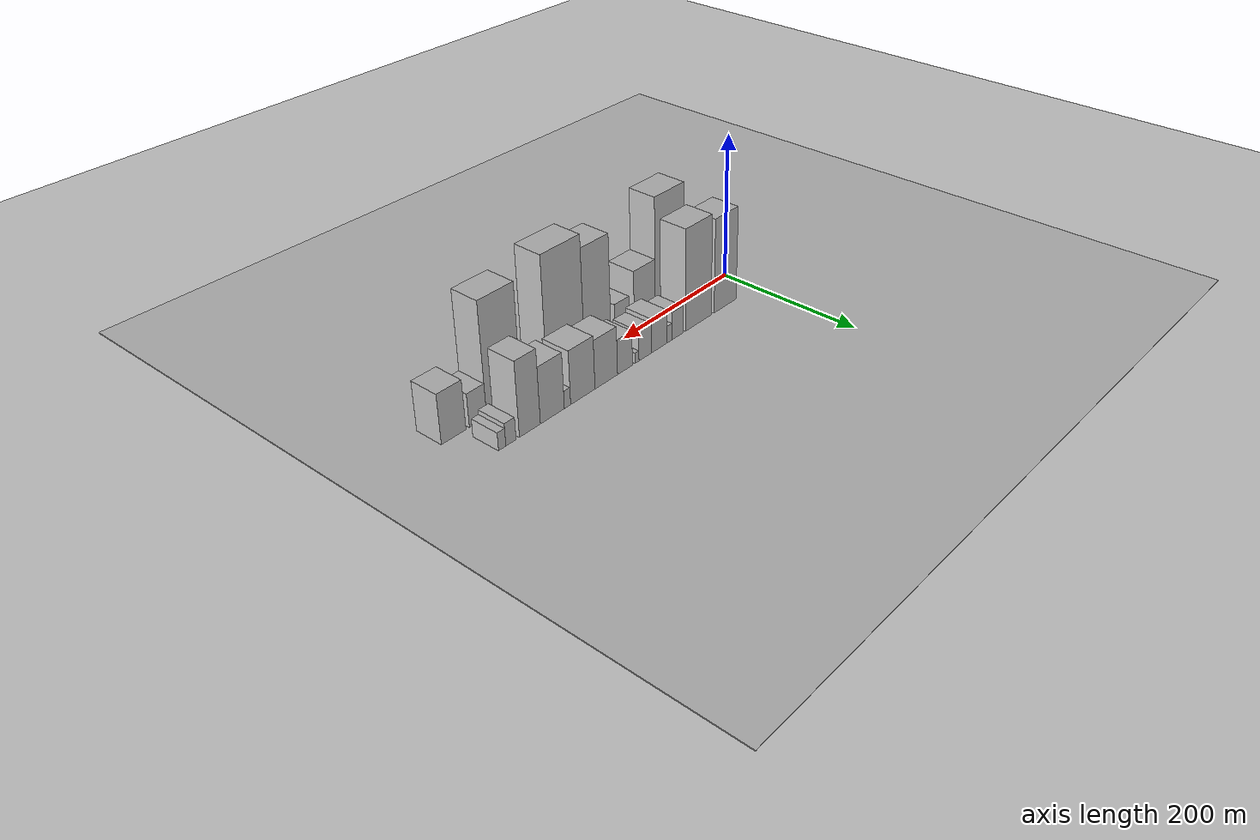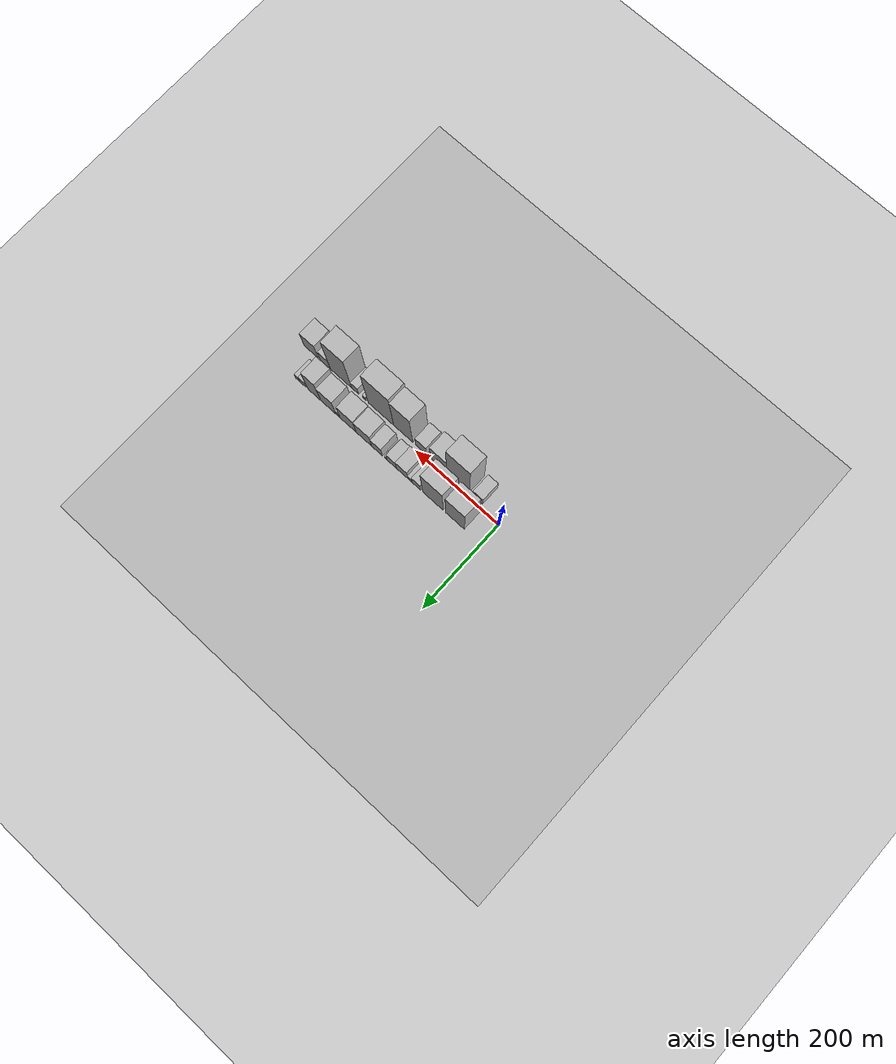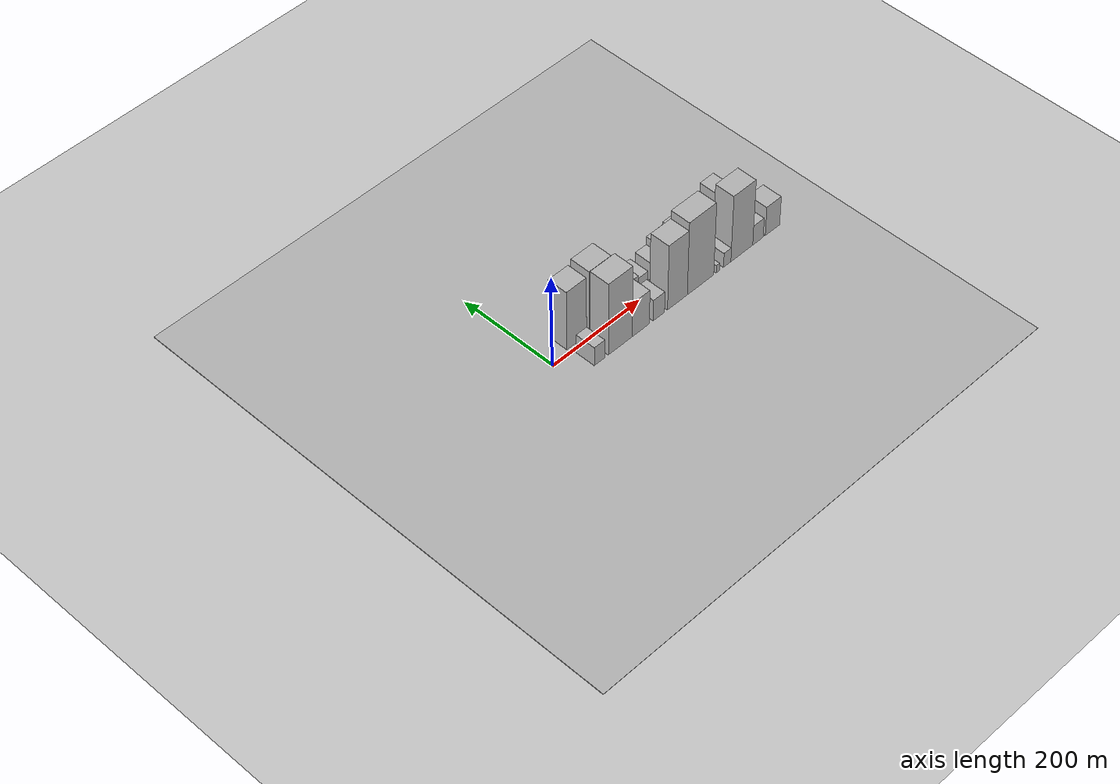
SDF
<?xml version="1.0" encoding="utf-8"?>

<sdf version="1.6">

   <world name="default">

      <gui fullscreen="0">

         <camera name="user_camera">

            <pose>-15 0 4.57585 0 0 0</pose>

            <view_controller>orbit</view_controller>

         </camera>

      </gui>

      <scene>

         <sky>

           <clouds>

             <speed>12</speed>

           </clouds>

         </sky>

         <ambient>0.4 0.4 0.4 1</ambient>

         <background>0.7 0.7 0.7 1</background>

         <shadows>1</shadows>

      </scene>

      <gravity>0 0 -9.8066</gravity>

      <magnetic_field>6e-06 2.3e-05 -4.2e-05</magnetic_field>

      <physics default="0" name="default_physics" type="ode">

         <ode>

            <solver>

               <type>quick</type>

               <iters>10</iters>

               <sor>1.0</sor>

               <use_dynamic_moi_rescaling>0</use_dynamic_moi_rescaling>

            </solver>

            <constraints>

               <cfm>0</cfm>

               <erp>0.2</erp>

               <contact_max_correcting_vel>100</contact_max_correcting_vel>

               <contact_surface_layer>0.001</contact_surface_layer>

            </constraints>

         </ode>

         <max_step_size>0.004</max_step_size>

         <real_time_factor>1</real_time_factor>

         <real_time_update_rate>250</real_time_update_rate>

      </physics>

      <light name="sun" type="directional">

         <cast_shadows>1</cast_shadows>

         <pose>0 0 10 0 0 0</pose>

         <diffuse>0.8 0.8 0.8 1</diffuse>

         <specular>0.2 0.2 0.2 1</specular>

         <attenuation>

            <range>1000</range>

            <constant>0.9</constant>

            <linear>0.01</linear>

            <quadratic>0.001</quadratic>

         </attenuation>

         <direction>-0.5 0.1 -0.9</direction>

      </light>

      <include>

         <name>ground_plane_1</name>

         <uri>model://HANNAS_ground_plane</uri>

         <pose>0 0 0  0 0 0</pose>

      </include>

      <include>

         <name>ground_plane_2</name>

         <uri>model://HANNAS_ground_plane</uri>

         <pose>100 0 0  0 0 0</pose>

      </include>

      <model name="building_1">

         <static>1</static>

         <pose frame="">62.2926 27.5000 0 0.000000 0.000000 1.570796</pose>

         <link name="link">

            <pose frame="">0 0 66.00 0 0 0</pose>

            <collision name="collision">

               <geometry>

                  <box>

                     <size>40.0000 44.5851 132.0000</size>

                  </box>

               </geometry>

               <max_contacts>10</max_contacts>

               <surface>

                  <contact>

                     <ode/>

                  </contact>

                  <bounce/>

                  <friction>

                     <torsional>

                        <ode/>

                     </torsional>

                     <ode/>

                  </friction>

               </surface>

            </collision>

            <visual name="visual">

               <cast_shadows>0</cast_shadows>

               <geometry>

                  <box>

                     <size>40.0000 44.5851 132.0000</size>

                  </box>

               </geometry>

               <material>

                  <script>

                     <uri>model://HANNAS_wall/materials/scripts</uri>

                     <uri>model://HANNAS_wall/materials/textures</uri>

                     <name>vrc/HANNAS_wall</name>

                  </script>

               </material>

            </visual>

            <self_collide>0</self_collide>

            <enable_wind>0</enable_wind>

            <kinematic>0</kinematic>

         </link>

      </model>

      <model name="building_2">

         <static>1</static>

         <pose frame="">115.4744 27.5000 0 0.000000 0.000000 1.570796</pose>

         <link name="link">

            <pose frame="">0 0 70.50 0 0 0</pose>

            <collision name="collision">

               <geometry>

                  <box>

                     <size>40.0000 49.7785 141.0000</size>

                  </box>

               </geometry>

               <max_contacts>10</max_contacts>

               <surface>

                  <contact>

                     <ode/>

                  </contact>

                  <bounce/>

                  <friction>

                     <torsional>

                        <ode/>

                     </torsional>

                     <ode/>

                  </friction>

               </surface>

            </collision>

            <visual name="visual">

               <cast_shadows>0</cast_shadows>

               <geometry>

                  <box>

                     <size>40.0000 49.7785 141.0000</size>

                  </box>

               </geometry>

               <material>

                  <script>

                     <uri>model://HANNAS_wall/materials/scripts</uri>

                     <uri>model://HANNAS_wall/materials/textures</uri>

                     <name>vrc/HANNAS_wall</name>

                  </script>

               </material>

            </visual>

            <self_collide>0</self_collide>

            <enable_wind>0</enable_wind>

            <kinematic>0</kinematic>

         </link>

      </model>

      <model name="building_3">

         <static>1</static>

         <pose frame="">155.6836 27.5000 0 0.000000 0.000000 1.570796</pose>

         <link name="link">

            <pose frame="">0 0 19.50 0 0 0</pose>

            <collision name="collision">

               <geometry>

                  <box>

                     <size>40.0000 20.6399 39.0000</size>

                  </box>

               </geometry>

               <max_contacts>10</max_contacts>

               <surface>

                  <contact>

                     <ode/>

                  </contact>

                  <bounce/>

                  <friction>

                     <torsional>

                        <ode/>

                     </torsional>

                     <ode/>

                  </friction>

               </surface>

            </collision>

            <visual name="visual">

               <cast_shadows>0</cast_shadows>

               <geometry>

                  <box>

                     <size>40.0000 20.6399 39.0000</size>

                  </box>

               </geometry>

               <material>

                  <script>

                     <uri>model://HANNAS_wall/materials/scripts</uri>

                     <uri>model://HANNAS_wall/materials/textures</uri>

                     <name>vrc/HANNAS_wall</name>

                  </script>

               </material>

            </visual>

            <self_collide>0</self_collide>

            <enable_wind>0</enable_wind>

            <kinematic>0</kinematic>

         </link>

      </model>

      <model name="building_4">

         <static>1</static>

         <pose frame="">171.1858 27.5000 0 0.000000 0.000000 1.570796</pose>

         <link name="link">

            <pose frame="">0 0 12.00 0 0 0</pose>

            <collision name="collision">

               <geometry>

                  <box>

                     <size>40.0000 10.3644 24.0000</size>

                  </box>

               </geometry>

               <max_contacts>10</max_contacts>

               <surface>

                  <contact>

                     <ode/>

                  </contact>

                  <bounce/>

                  <friction>

                     <torsional>

                        <ode/>

                     </torsional>

                     <ode/>

                  </friction>

               </surface>

            </collision>

            <visual name="visual">

               <cast_shadows>0</cast_shadows>

               <geometry>

                  <box>

                     <size>40.0000 10.3644 24.0000</size>

                  </box>

               </geometry>

               <material>

                  <script>

                     <uri>model://HANNAS_wall/materials/scripts</uri>

                     <uri>model://HANNAS_wall/materials/textures</uri>

                     <name>vrc/HANNAS_wall</name>

                  </script>

               </material>

            </visual>

            <self_collide>0</self_collide>

            <enable_wind>0</enable_wind>

            <kinematic>0</kinematic>

         </link>

      </model>

      <model name="building_5">

         <static>1</static>

         <pose frame="">190.2674 27.5000 0 0.000000 0.000000 1.570796</pose>

         <link name="link">

            <pose frame="">0 0 24.00 0 0 0</pose>

            <collision name="collision">

               <geometry>

                  <box>

                     <size>40.0000 27.7987 48.0000</size>

                  </box>

               </geometry>

               <max_contacts>10</max_contacts>

               <surface>

                  <contact>

                     <ode/>

                  </contact>

                  <bounce/>

                  <friction>

                     <torsional>

                        <ode/>

                     </torsional>

                     <ode/>

                  </friction>

               </surface>

            </collision>

            <visual name="visual">

               <cast_shadows>0</cast_shadows>

               <geometry>

                  <box>

                     <size>40.0000 27.7987 48.0000</size>

                  </box>

               </geometry>

               <material>

                  <script>

                     <uri>model://HANNAS_wall/materials/scripts</uri>

                     <uri>model://HANNAS_wall/materials/textures</uri>

                     <name>vrc/HANNAS_wall</name>

                  </script>

               </material>

            </visual>

            <self_collide>0</self_collide>

            <enable_wind>0</enable_wind>

            <kinematic>0</kinematic>

         </link>

      </model>

      <model name="building_6">

         <static>1</static>

         <pose frame="">215.4384 27.5000 0 0.000000 0.000000 1.570796</pose>

         <link name="link">

            <pose frame="">0 0 21.00 0 0 0</pose>

            <collision name="collision">

               <geometry>

                  <box>

                     <size>40.0000 22.5434 42.0000</size>

                  </box>

               </geometry>

               <max_contacts>10</max_contacts>

               <surface>

                  <contact>

                     <ode/>

                  </contact>

                  <bounce/>

                  <friction>

                     <torsional>

                        <ode/>

                     </torsional>

                     <ode/>

                  </friction>

               </surface>

            </collision>

            <visual name="visual">

               <cast_shadows>0</cast_shadows>

               <geometry>

                  <box>

                     <size>40.0000 22.5434 42.0000</size>

                  </box>

               </geometry>

               <material>

                  <script>

                     <uri>model://HANNAS_wall/materials/scripts</uri>

                     <uri>model://HANNAS_wall/materials/textures</uri>

                     <name>vrc/HANNAS_wall</name>

                  </script>

               </material>

            </visual>

            <self_collide>0</self_collide>

            <enable_wind>0</enable_wind>

            <kinematic>0</kinematic>

         </link>

      </model>

      <model name="building_7">

         <static>1</static>

         <pose frame="">230.0436 27.5000 0 0.000000 0.000000 1.570796</pose>

         <link name="link">

            <pose frame="">0 0 7.50 0 0 0</pose>

            <collision name="collision">

               <geometry>

                  <box>

                     <size>40.0000 6.6670 15.0000</size>

                  </box>

               </geometry>

               <max_contacts>10</max_contacts>

               <surface>

                  <contact>

                     <ode/>

                  </contact>

                  <bounce/>

                  <friction>

                     <torsional>

                        <ode/>

                     </torsional>

                     <ode/>

                  </friction>

               </surface>

            </collision>

            <visual name="visual">

               <cast_shadows>0</cast_shadows>

               <geometry>

                  <box>

                     <size>40.0000 6.6670 15.0000</size>

                  </box>

               </geometry>

               <material>

                  <script>

                     <uri>model://HANNAS_wall/materials/scripts</uri>

                     <uri>model://HANNAS_wall/materials/textures</uri>

                     <name>vrc/HANNAS_wall</name>

                  </script>

               </material>

            </visual>

            <self_collide>0</self_collide>

            <enable_wind>0</enable_wind>

            <kinematic>0</kinematic>

         </link>

      </model>

      <model name="building_8">

         <static>1</static>

         <pose frame="">251.4004 27.5000 0 0.000000 0.000000 1.570796</pose>

         <link name="link">

            <pose frame="">0 0 24.00 0 0 0</pose>

            <collision name="collision">

               <geometry>

                  <box>

                     <size>40.0000 26.0466 48.0000</size>

                  </box>

               </geometry>

               <max_contacts>10</max_contacts>

               <surface>

                  <contact>

                     <ode/>

                  </contact>

                  <bounce/>

                  <friction>

                     <torsional>

                        <ode/>

                     </torsional>

                     <ode/>

                  </friction>

               </surface>

            </collision>

            <visual name="visual">

               <cast_shadows>0</cast_shadows>

               <geometry>

                  <box>

                     <size>40.0000 26.0466 48.0000</size>

                  </box>

               </geometry>

               <material>

                  <script>

                     <uri>model://HANNAS_wall/materials/scripts</uri>

                     <uri>model://HANNAS_wall/materials/textures</uri>

                     <name>vrc/HANNAS_wall</name>

                  </script>

               </material>

            </visual>

            <self_collide>0</self_collide>

            <enable_wind>0</enable_wind>

            <kinematic>0</kinematic>

         </link>

      </model>

      <model name="building_9">

         <static>1</static>

         <pose frame="">283.6689 27.5000 0 0.000000 0.000000 1.570796</pose>

         <link name="link">

            <pose frame="">0 0 33.00 0 0 0</pose>

            <collision name="collision">

               <geometry>

                  <box>

                     <size>40.0000 38.4903 66.0000</size>

                  </box>

               </geometry>

               <max_contacts>10</max_contacts>

               <surface>

                  <contact>

                     <ode/>

                  </contact>

                  <bounce/>

                  <friction>

                     <torsional>

                        <ode/>

                     </torsional>

                     <ode/>

                  </friction>

               </surface>

            </collision>

            <visual name="visual">

               <cast_shadows>0</cast_shadows>

               <geometry>

                  <box>

                     <size>40.0000 38.4903 66.0000</size>

                  </box>

               </geometry>

               <material>

                  <script>

                     <uri>model://HANNAS_wall/materials/scripts</uri>

                     <uri>model://HANNAS_wall/materials/textures</uri>

                     <name>vrc/HANNAS_wall</name>

                  </script>

               </material>

            </visual>

            <self_collide>0</self_collide>

            <enable_wind>0</enable_wind>

            <kinematic>0</kinematic>

         </link>

      </model>

      <model name="building_10">

         <static>1</static>

         <pose frame="">322.9542 27.5000 0 0.000000 0.000000 1.570796</pose>

         <link name="link">

            <pose frame="">0 0 36.00 0 0 0</pose>

            <collision name="collision">

               <geometry>

                  <box>

                     <size>40.0000 40.0803 72.0000</size>

                  </box>

               </geometry>

               <max_contacts>10</max_contacts>

               <surface>

                  <contact>

                     <ode/>

                  </contact>

                  <bounce/>

                  <friction>

                     <torsional>

                        <ode/>

                     </torsional>

                     <ode/>

                  </friction>

               </surface>

            </collision>

            <visual name="visual">

               <cast_shadows>0</cast_shadows>

               <geometry>

                  <box>

                     <size>40.0000 40.0803 72.0000</size>

                  </box>

               </geometry>

               <material>

                  <script>

                     <uri>model://HANNAS_wall/materials/scripts</uri>

                     <uri>model://HANNAS_wall/materials/textures</uri>

                     <name>vrc/HANNAS_wall</name>

                  </script>

               </material>

            </visual>

            <self_collide>0</self_collide>

            <enable_wind>0</enable_wind>

            <kinematic>0</kinematic>

         </link>

      </model>

      <model name="building_11">

         <static>1</static>

         <pose frame="">348.0448 27.5000 0 0.000000 0.000000 1.570796</pose>

         <link name="link">

            <pose frame="">0 0 12.00 0 0 0</pose>

            <collision name="collision">

               <geometry>

                  <box>

                     <size>40.0000 10.1010 24.0000</size>

                  </box>

               </geometry>

               <max_contacts>10</max_contacts>

               <surface>

                  <contact>

                     <ode/>

                  </contact>

                  <bounce/>

                  <friction>

                     <torsional>

                        <ode/>

                     </torsional>

                     <ode/>

                  </friction>

               </surface>

            </collision>

            <visual name="visual">

               <cast_shadows>0</cast_shadows>

               <geometry>

                  <box>

                     <size>40.0000 10.1010 24.0000</size>

                  </box>

               </geometry>

               <material>

                  <script>

                     <uri>model://HANNAS_wall/materials/scripts</uri>

                     <uri>model://HANNAS_wall/materials/textures</uri>

                     <name>vrc/HANNAS_wall</name>

                  </script>

               </material>

            </visual>

            <self_collide>0</self_collide>

            <enable_wind>0</enable_wind>

            <kinematic>0</kinematic>

         </link>

      </model>

      <model name="building_12">

         <static>1</static>

         <pose frame="">372.0215 27.5000 0 0.000000 0.000000 1.570796</pose>

         <link name="link">

            <pose frame="">0 0 37.50 0 0 0</pose>

            <collision name="collision">

               <geometry>

                  <box>

                     <size>40.0000 37.8523 75.0000</size>

                  </box>

               </geometry>

               <max_contacts>10</max_contacts>

               <surface>

                  <contact>

                     <ode/>

                  </contact>

                  <bounce/>

                  <friction>

                     <torsional>

                        <ode/>

                     </torsional>

                     <ode/>

                  </friction>

               </surface>

            </collision>

            <visual name="visual">

               <cast_shadows>0</cast_shadows>

               <geometry>

                  <box>

                     <size>40.0000 37.8523 75.0000</size>

                  </box>

               </geometry>

               <material>

                  <script>

                     <uri>model://HANNAS_wall/materials/scripts</uri>

                     <uri>model://HANNAS_wall/materials/textures</uri>

                     <name>vrc/HANNAS_wall</name>

                  </script>

               </material>

            </visual>

            <self_collide>0</self_collide>

            <enable_wind>0</enable_wind>

            <kinematic>0</kinematic>

         </link>

      </model>

      <model name="building_13">

         <static>1</static>

         <pose frame="">407.0138 27.5000 0 0.000000 0.000000 1.570796</pose>

         <link name="link">

            <pose frame="">0 0 49.50 0 0 0</pose>

            <collision name="collision">

               <geometry>

                  <box>

                     <size>40.0000 32.1323 99.0000</size>

                  </box>

               </geometry>

               <max_contacts>10</max_contacts>

               <surface>

                  <contact>

                     <ode/>

                  </contact>

                  <bounce/>

                  <friction>

                     <torsional>

                        <ode/>

                     </torsional>

                     <ode/>

                  </friction>

               </surface>

            </collision>

            <visual name="visual">

               <cast_shadows>0</cast_shadows>

               <geometry>

                  <box>

                     <size>40.0000 32.1323 99.0000</size>

                  </box>

               </geometry>

               <material>

                  <script>

                     <uri>model://HANNAS_wall/materials/scripts</uri>

                     <uri>model://HANNAS_wall/materials/textures</uri>

                     <name>vrc/HANNAS_wall</name>

                  </script>

               </material>

            </visual>

            <self_collide>0</self_collide>

            <enable_wind>0</enable_wind>

            <kinematic>0</kinematic>

         </link>

      </model>

      <model name="building_14">

         <static>1</static>

         <pose frame="">435.7087 27.5000 0 0.000000 0.000000 1.570796</pose>

         <link name="link">

            <pose frame="">0 0 15.00 0 0 0</pose>

            <collision name="collision">

               <geometry>

                  <box>

                     <size>40.0000 15.2576 30.0000</size>

                  </box>

               </geometry>

               <max_contacts>10</max_contacts>

               <surface>

                  <contact>

                     <ode/>

                  </contact>

                  <bounce/>

                  <friction>

                     <torsional>

                        <ode/>

                     </torsional>

                     <ode/>

                  </friction>

               </surface>

            </collision>

            <visual name="visual">

               <cast_shadows>0</cast_shadows>

               <geometry>

                  <box>

                     <size>40.0000 15.2576 30.0000</size>

                  </box>

               </geometry>

               <material>

                  <script>

                     <uri>model://HANNAS_wall/materials/scripts</uri>

                     <uri>model://HANNAS_wall/materials/textures</uri>

                     <name>vrc/HANNAS_wall</name>

                  </script>

               </material>

            </visual>

            <self_collide>0</self_collide>

            <enable_wind>0</enable_wind>

            <kinematic>0</kinematic>

         </link>

      </model>

      <model name="building_15">

         <static>1</static>

         <pose frame="">448.7269 27.5000 0 0.000000 0.000000 1.570796</pose>

         <link name="link">

            <pose frame="">0 0 12.00 0 0 0</pose>

            <collision name="collision">

               <geometry>

                  <box>

                     <size>40.0000 10.7787 24.0000</size>

                  </box>

               </geometry>

               <max_contacts>10</max_contacts>

               <surface>

                  <contact>

                     <ode/>

                  </contact>

                  <bounce/>

                  <friction>

                     <torsional>

                        <ode/>

                     </torsional>

                     <ode/>

                  </friction>

               </surface>

            </collision>

            <visual name="visual">

               <cast_shadows>0</cast_shadows>

               <geometry>

                  <box>

                     <size>40.0000 10.7787 24.0000</size>

                  </box>

               </geometry>

               <material>

                  <script>

                     <uri>model://HANNAS_wall/materials/scripts</uri>

                     <uri>model://HANNAS_wall/materials/textures</uri>

                     <name>vrc/HANNAS_wall</name>

                  </script>

               </material>

            </visual>

            <self_collide>0</self_collide>

            <enable_wind>0</enable_wind>

            <kinematic>0</kinematic>

         </link>

      </model>

      <model name="building_16">

         <static>1</static>

         <pose frame="">57.9200 -27.5000 0 0.000000 0.000000 1.570796</pose>

         <link name="link">

            <pose frame="">0 0 21.00 0 0 0</pose>

            <collision name="collision">

               <geometry>

                  <box>

                     <size>40.0000 23.8399 42.0000</size>

                  </box>

               </geometry>

               <max_contacts>10</max_contacts>

               <surface>

                  <contact>

                     <ode/>

                  </contact>

                  <bounce/>

                  <friction>

                     <torsional>

                        <ode/>

                     </torsional>

                     <ode/>

                  </friction>

               </surface>

            </collision>

            <visual name="visual">

               <cast_shadows>0</cast_shadows>

               <geometry>

                  <box>

                     <size>40.0000 23.8399 42.0000</size>

                  </box>

               </geometry>

               <material>

                  <script>

                     <uri>model://HANNAS_wall/materials/scripts</uri>

                     <uri>model://HANNAS_wall/materials/textures</uri>

                     <name>vrc/HANNAS_wall</name>

                  </script>

               </material>

            </visual>

            <self_collide>0</self_collide>

            <enable_wind>0</enable_wind>

            <kinematic>0</kinematic>

         </link>

      </model>

      <model name="building_17">

         <static>1</static>

         <pose frame="">105.3323 -27.5000 0 0.000000 0.000000 1.570796</pose>

         <link name="link">

            <pose frame="">0 0 81.00 0 0 0</pose>

            <collision name="collision">

               <geometry>

                  <box>

                     <size>40.0000 54.9848 162.0000</size>

                  </box>

               </geometry>

               <max_contacts>10</max_contacts>

               <surface>

                  <contact>

                     <ode/>

                  </contact>

                  <bounce/>

                  <friction>

                     <torsional>

                        <ode/>

                     </torsional>

                     <ode/>

                  </friction>

               </surface>

            </collision>

            <visual name="visual">

               <cast_shadows>0</cast_shadows>

               <geometry>

                  <box>

                     <size>40.0000 54.9848 162.0000</size>

                  </box>

               </geometry>

               <material>

                  <script>

                     <uri>model://HANNAS_wall/materials/scripts</uri>

                     <uri>model://HANNAS_wall/materials/textures</uri>

                     <name>vrc/HANNAS_wall</name>

                  </script>

               </material>

            </visual>

            <self_collide>0</self_collide>

            <enable_wind>0</enable_wind>

            <kinematic>0</kinematic>

         </link>

      </model>

      <model name="building_18">

         <static>1</static>

         <pose frame="">152.6068 -27.5000 0 0.000000 0.000000 1.570796</pose>

         <link name="link">

            <pose frame="">0 0 39.00 0 0 0</pose>

            <collision name="collision">

               <geometry>

                  <box>

                     <size>40.0000 39.5641 78.0000</size>

                  </box>

               </geometry>

               <max_contacts>10</max_contacts>

               <surface>

                  <contact>

                     <ode/>

                  </contact>

                  <bounce/>

                  <friction>

                     <torsional>

                        <ode/>

                     </torsional>

                     <ode/>

                  </friction>

               </surface>

            </collision>

            <visual name="visual">

               <cast_shadows>0</cast_shadows>

               <geometry>

                  <box>

                     <size>40.0000 39.5641 78.0000</size>

                  </box>

               </geometry>

               <material>

                  <script>

                     <uri>model://HANNAS_wall/materials/scripts</uri>

                     <uri>model://HANNAS_wall/materials/textures</uri>

                     <name>vrc/HANNAS_wall</name>

                  </script>

               </material>

            </visual>

            <self_collide>0</self_collide>

            <enable_wind>0</enable_wind>

            <kinematic>0</kinematic>

         </link>

      </model>

      <model name="building_19">

         <static>1</static>

         <pose frame="">194.6036 -27.5000 0 0.000000 0.000000 1.570796</pose>

         <link name="link">

            <pose frame="">0 0 24.00 0 0 0</pose>

            <collision name="collision">

               <geometry>

                  <box>

                     <size>40.0000 26.4297 48.0000</size>

                  </box>

               </geometry>

               <max_contacts>10</max_contacts>

               <surface>

                  <contact>

                     <ode/>

                  </contact>

                  <bounce/>

                  <friction>

                     <torsional>

                        <ode/>

                     </torsional>

                     <ode/>

                  </friction>

               </surface>

            </collision>

            <visual name="visual">

               <cast_shadows>0</cast_shadows>

               <geometry>

                  <box>

                     <size>40.0000 26.4297 48.0000</size>

                  </box>

               </geometry>

               <material>

                  <script>

                     <uri>model://HANNAS_wall/materials/scripts</uri>

                     <uri>model://HANNAS_wall/materials/textures</uri>

                     <name>vrc/HANNAS_wall</name>

                  </script>

               </material>

            </visual>

            <self_collide>0</self_collide>

            <enable_wind>0</enable_wind>

            <kinematic>0</kinematic>

         </link>

      </model>

      <model name="building_20">

         <static>1</static>

         <pose frame="">238.1781 -27.5000 0 0.000000 0.000000 1.570796</pose>

         <link name="link">

            <pose frame="">0 0 73.50 0 0 0</pose>

            <collision name="collision">

               <geometry>

                  <box>

                     <size>40.0000 46.7192 147.0000</size>

                  </box>

               </geometry>

               <max_contacts>10</max_contacts>

               <surface>

                  <contact>

                     <ode/>

                  </contact>

                  <bounce/>

                  <friction>

                     <torsional>

                        <ode/>

                     </torsional>

                     <ode/>

                  </friction>

               </surface>

            </collision>

            <visual name="visual">

               <cast_shadows>0</cast_shadows>

               <geometry>

                  <box>

                     <size>40.0000 46.7192 147.0000</size>

                  </box>

               </geometry>

               <material>

                  <script>

                     <uri>model://HANNAS_wall/materials/scripts</uri>

                     <uri>model://HANNAS_wall/materials/textures</uri>

                     <name>vrc/HANNAS_wall</name>

                  </script>

               </material>

            </visual>

            <self_collide>0</self_collide>

            <enable_wind>0</enable_wind>

            <kinematic>0</kinematic>

         </link>

      </model>

      <model name="building_21">

         <static>1</static>

         <pose frame="">293.0962 -27.5000 0 0.000000 0.000000 1.570796</pose>

         <link name="link">

            <pose frame="">0 0 82.50 0 0 0</pose>

            <collision name="collision">

               <geometry>

                  <box>

                     <size>40.0000 63.1172 165.0000</size>

                  </box>

               </geometry>

               <max_contacts>10</max_contacts>

               <surface>

                  <contact>

                     <ode/>

                  </contact>

                  <bounce/>

                  <friction>

                     <torsional>

                        <ode/>

                     </torsional>

                     <ode/>

                  </friction>

               </surface>

            </collision>

            <visual name="visual">

               <cast_shadows>0</cast_shadows>

               <geometry>

                  <box>

                     <size>40.0000 63.1172 165.0000</size>

                  </box>

               </geometry>

               <material>

                  <script>

                     <uri>model://HANNAS_wall/materials/scripts</uri>

                     <uri>model://HANNAS_wall/materials/textures</uri>

                     <name>vrc/HANNAS_wall</name>

                  </script>

               </material>

            </visual>

            <self_collide>0</self_collide>

            <enable_wind>0</enable_wind>

            <kinematic>0</kinematic>

         </link>

      </model>

      <model name="building_22">

         <static>1</static>

         <pose frame="">334.5513 -27.5000 0 0.000000 0.000000 1.570796</pose>

         <link name="link">

            <pose frame="">0 0 9.00 0 0 0</pose>

            <collision name="collision">

               <geometry>

                  <box>

                     <size>40.0000 7.7930 18.0000</size>

                  </box>

               </geometry>

               <max_contacts>10</max_contacts>

               <surface>

                  <contact>

                     <ode/>

                  </contact>

                  <bounce/>

                  <friction>

                     <torsional>

                        <ode/>

                     </torsional>

                     <ode/>

                  </friction>

               </surface>

            </collision>

            <visual name="visual">

               <cast_shadows>0</cast_shadows>

               <geometry>

                  <box>

                     <size>40.0000 7.7930 18.0000</size>

                  </box>

               </geometry>

               <material>

                  <script>

                     <uri>model://HANNAS_wall/materials/scripts</uri>

                     <uri>model://HANNAS_wall/materials/textures</uri>

                     <name>vrc/HANNAS_wall</name>

                  </script>

               </material>

            </visual>

            <self_collide>0</self_collide>

            <enable_wind>0</enable_wind>

            <kinematic>0</kinematic>

         </link>

      </model>

      <model name="building_23">

         <static>1</static>

         <pose frame="">357.2785 -27.5000 0 0.000000 0.000000 1.570796</pose>

         <link name="link">

            <pose frame="">0 0 16.50 0 0 0</pose>

            <collision name="collision">

               <geometry>

                  <box>

                     <size>40.0000 17.6613 33.0000</size>

                  </box>

               </geometry>

               <max_contacts>10</max_contacts>

               <surface>

                  <contact>

                     <ode/>

                  </contact>

                  <bounce/>

                  <friction>

                     <torsional>

                        <ode/>

                     </torsional>

                     <ode/>

                  </friction>

               </surface>

            </collision>

            <visual name="visual">

               <cast_shadows>0</cast_shadows>

               <geometry>

                  <box>

                     <size>40.0000 17.6613 33.0000</size>

                  </box>

               </geometry>

               <material>

                  <script>

                     <uri>model://HANNAS_wall/materials/scripts</uri>

                     <uri>model://HANNAS_wall/materials/textures</uri>

                     <name>vrc/HANNAS_wall</name>

                  </script>

               </material>

            </visual>

            <self_collide>0</self_collide>

            <enable_wind>0</enable_wind>

            <kinematic>0</kinematic>

         </link>

      </model>

      <model name="building_24">

         <static>1</static>

         <pose frame="">392.7912 -27.5000 0 0.000000 0.000000 1.570796</pose>

         <link name="link">

            <pose frame="">0 0 75.00 0 0 0</pose>

            <collision name="collision">

               <geometry>

                  <box>

                     <size>40.0000 53.3642 150.0000</size>

                  </box>

               </geometry>

               <max_contacts>10</max_contacts>

               <surface>

                  <contact>

                     <ode/>

                  </contact>

                  <bounce/>

                  <friction>

                     <torsional>

                        <ode/>

                     </torsional>

                     <ode/>

                  </friction>

               </surface>

            </collision>

            <visual name="visual">

               <cast_shadows>0</cast_shadows>

               <geometry>

                  <box>

                     <size>40.0000 53.3642 150.0000</size>

                  </box>

               </geometry>

               <material>

                  <script>

                     <uri>model://HANNAS_wall/materials/scripts</uri>

                     <uri>model://HANNAS_wall/materials/textures</uri>

                     <name>vrc/HANNAS_wall</name>

                  </script>

               </material>

            </visual>

            <self_collide>0</self_collide>

            <enable_wind>0</enable_wind>

            <kinematic>0</kinematic>

         </link>

      </model>

      <model name="building_25">

         <static>1</static>

         <pose frame="">432.3809 -27.5000 0 0.000000 0.000000 1.570796</pose>

         <link name="link">

            <pose frame="">0 0 22.50 0 0 0</pose>

            <collision name="collision">

               <geometry>

                  <box>

                     <size>40.0000 25.8152 45.0000</size>

                  </box>

               </geometry>

               <max_contacts>10</max_contacts>

               <surface>

                  <contact>

                     <ode/>

                  </contact>

                  <bounce/>

                  <friction>

                     <torsional>

                        <ode/>

                     </torsional>

                     <ode/>

                  </friction>

               </surface>

            </collision>

            <visual name="visual">

               <cast_shadows>0</cast_shadows>

               <geometry>

                  <box>

                     <size>40.0000 25.8152 45.0000</size>

                  </box>

               </geometry>

               <material>

                  <script>

                     <uri>model://HANNAS_wall/materials/scripts</uri>

                     <uri>model://HANNAS_wall/materials/textures</uri>

                     <name>vrc/HANNAS_wall</name>

                  </script>

               </material>

            </visual>

            <self_collide>0</self_collide>

            <enable_wind>0</enable_wind>

            <kinematic>0</kinematic>

         </link>

      </model>

      <model name="building_26">

         <static>1</static>

         <pose frame="">468.1121 -27.5000 0 0.000000 0.000000 1.570796</pose>

         <link name="link">

            <pose frame="">0 0 33.00 0 0 0</pose>

            <collision name="collision">

               <geometry>

                  <box>

                     <size>40.0000 35.6474 66.0000</size>

                  </box>

               </geometry>

               <max_contacts>10</max_contacts>

               <surface>

                  <contact>

                     <ode/>

                  </contact>

                  <bounce/>

                  <friction>

                     <torsional>

                        <ode/>

                     </torsional>

                     <ode/>

                  </friction>

               </surface>

            </collision>

            <visual name="visual">

               <cast_shadows>0</cast_shadows>

               <geometry>

                  <box>

                     <size>40.0000 35.6474 66.0000</size>

                  </box>

               </geometry>

               <material>

                  <script>

                     <uri>model://HANNAS_wall/materials/scripts</uri>

                     <uri>model://HANNAS_wall/materials/textures</uri>

                     <name>vrc/HANNAS_wall</name>

                  </script>

               </material>

            </visual>

            <self_collide>0</self_collide>

            <enable_wind>0</enable_wind>

            <kinematic>0</kinematic>

         </link>

      </model>

   </world>

</sdf>

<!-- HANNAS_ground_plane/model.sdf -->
<sdf version="1.4">
<model name="HANNAS_ground_plane">
  <static>true</static>
    <link name="link">
      <collision name="collision">
        <geometry>
          <plane>
            <normal>0 0 1</normal>
            <size>1000 1000</size>
          </plane>
        </geometry>
        <surface>
          <friction>
            <ode>
              <mu>100</mu>
              <mu2>50</mu2>
            </ode>
          </friction>
        </surface>
      </collision>
      <visual name="visual">
        <cast_shadows>false</cast_shadows>
        <geometry>
          <plane>
            <normal>0 0 1</normal>
            <size>1000 1000</size>
          </plane>
        </geometry>
        <material>
          <script>
            <uri>model://HANNAS_ground_plane/materials/scripts/HANNAS_ground_plane.material</uri>
	    <uri>model://HANNAS_ground_plane/materials/textures</uri>
            <name>HANNASGroundPlane/Image</name>
          </script>
        </material>
      </visual>
    </link>
  </model>
</sdf>
